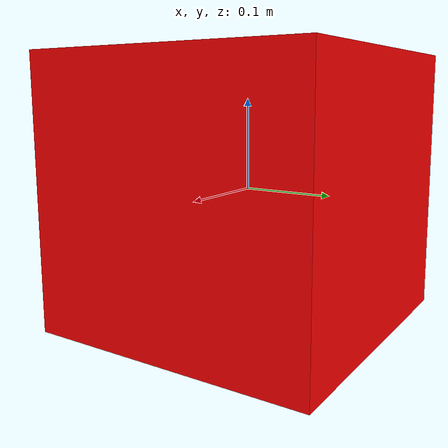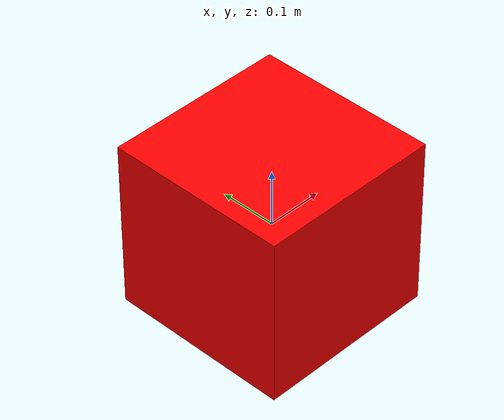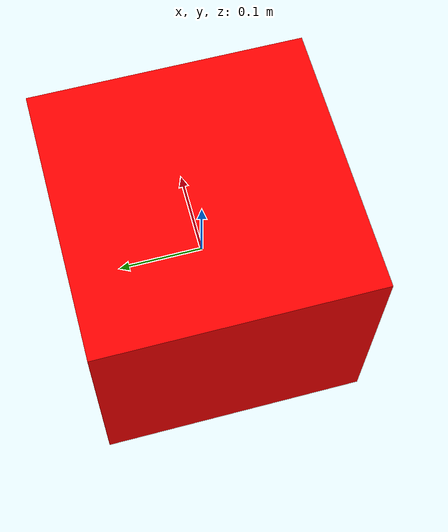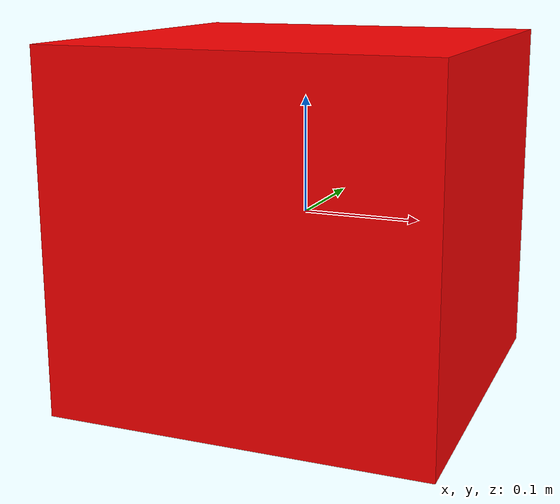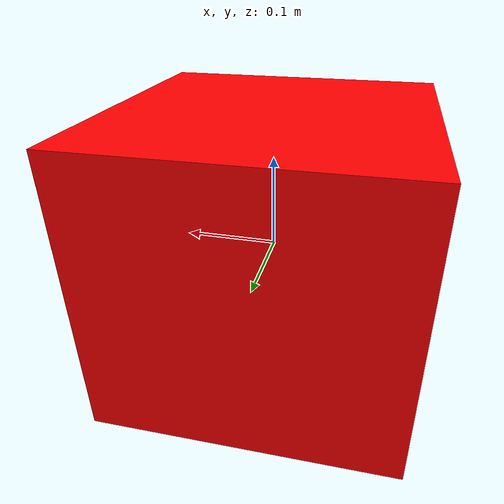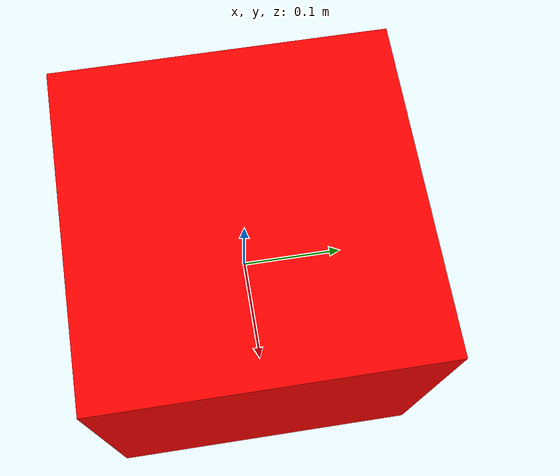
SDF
<?xml version="1.0" ?>
<sdf version="1.5">
  <model name="table_block">
    <static>false</static>
    <link name='link'>

      <inertial>
        <mass>0.001</mass>
        <inertia>
          <ixx>0</ixx>
          <ixy>0</ixy>
          <ixz>0</ixz>
          <iyy>0</iyy>
          <iyz>0</iyz>
          <izz>0</izz>
        </inertia>
      </inertial>

      <collision name="collision">
	<geometry>
	  <box>
	    <size>0.32 0.32 0.3</size>
	  </box>
	</geometry>
      </collision>

      <visual name="visual">
	<geometry>
	  <box>
	    <size>0.32 0.32 0.3</size>
	  </box>
	</geometry>
	<material>
	  <ambient>1 0 0 1</ambient>
	  <diffuse>1 0 0 1</diffuse>
	  <specular>0.1 0.1 0.1 1</specular>
	  <emissive>0 0 0 0</emissive>
	</material>
      </visual>

      <sensor name='my_contact' type='contact'>
        <contact>
          <collision>collision</collision>
        </contact>
	<update_rate> 5 </update_rate>
      </sensor>
    </link>
  </model>
</sdf>
